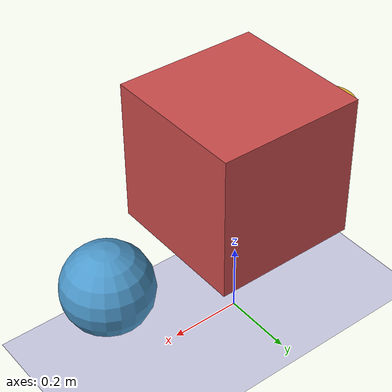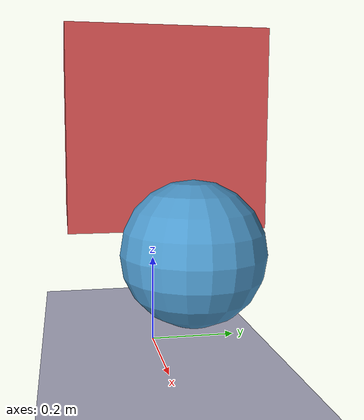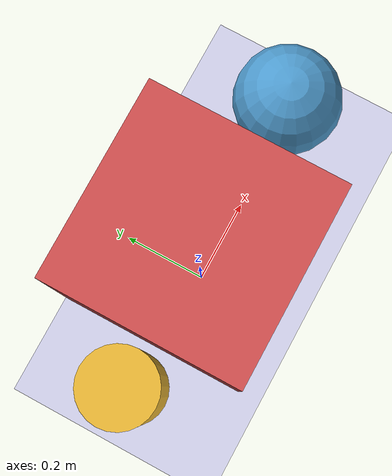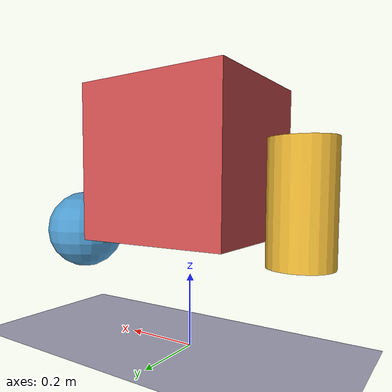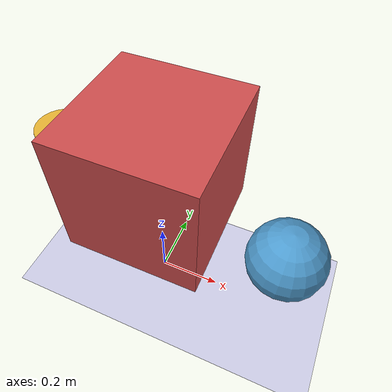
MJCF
<mujoco>
  <option timestep="0.01" gravity="0 0 -9.81"/>

  <worldbody>
    <!-- Lighting -->
    <light pos="2 2 3" dir="-1 -1 -1" diffuse="1 1 1"/>
    <light pos="-2 2 3" dir="1 -1 -1" diffuse="0.5 0.5 0.5"/>

    <!-- Ground plane -->
    <geom type="plane" size="2 2 0.1" rgba="0.8 0.8 0.9 1" friction="1 0.005 0.0001"/>

    <!-- Main object -->
    <body pos="0 0 0.5" name="main_object">
      <geom type="box" size="0.2 0.2 0.2" rgba="0.8 0.3 0.3 1" mass="1" friction="1 0.005 0.0001"/>
      <joint type="free"/>
    </body>

    <!-- Secondary object -->
    <body pos="0.4 0 0.3" name="secondary_object">
      <geom type="sphere" size="0.12" rgba="0.3 0.6 0.8 1" mass="0.8" friction="1 0.005 0.0001"/>
      <joint type="free"/>
    </body>

    <!-- Interactive element -->
    <body pos="-0.3 0 0.4" name="interactive">
      <geom type="cylinder" size="0.08 0.15" rgba="0.9 0.7 0.2 1" mass="0.5" friction="1 0.005 0.0001"/>
      <joint type="free"/>
    </body>
  </worldbody>
</mujoco>
